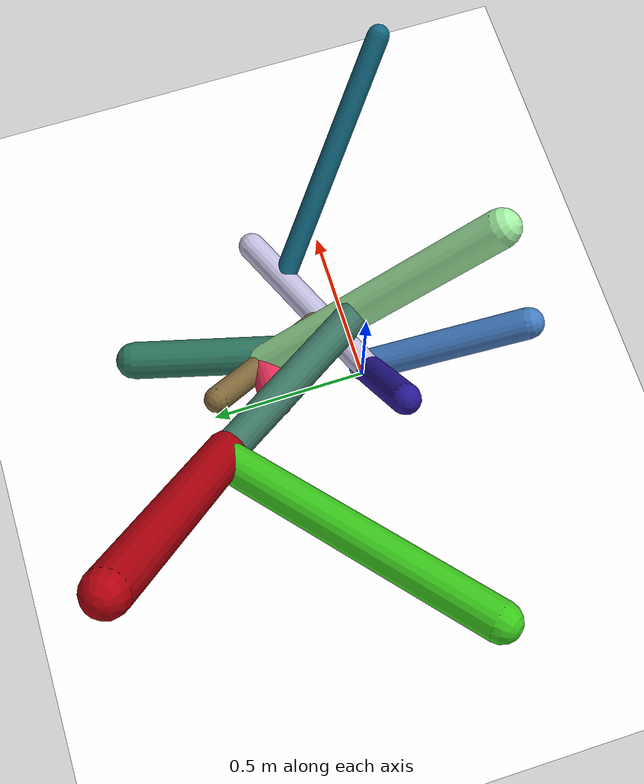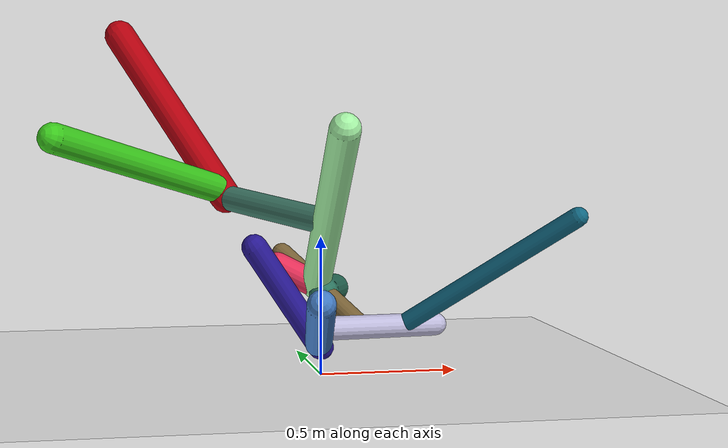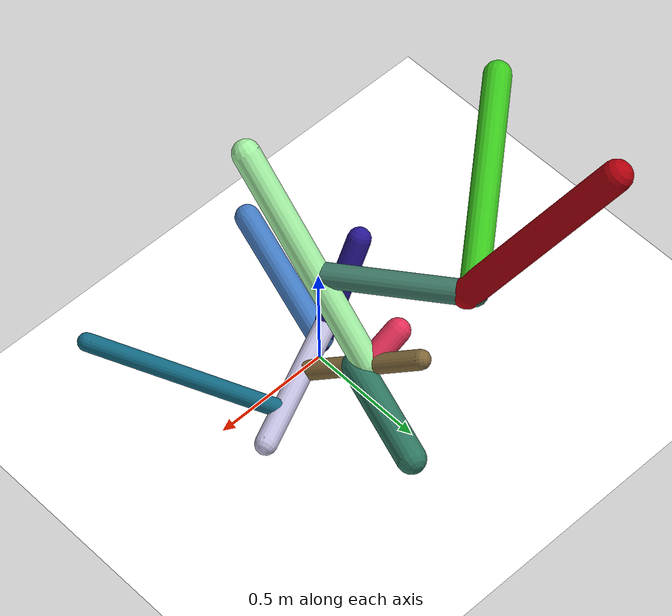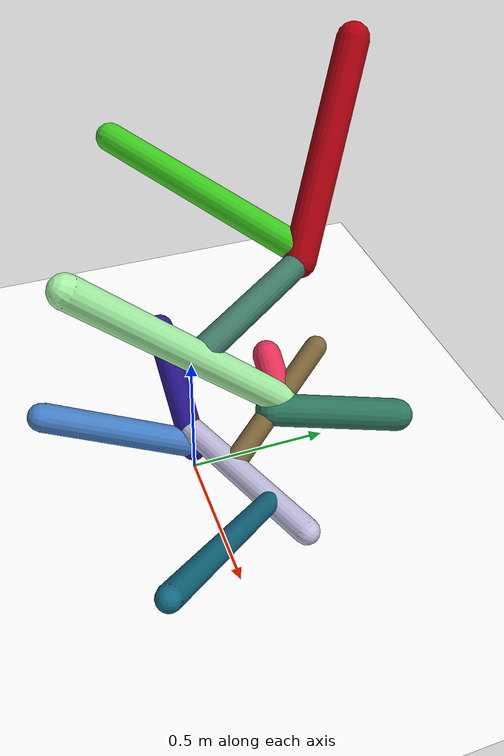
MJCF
<mujoco model="morphology">
  <option timestep="0.01"/>
  <default>
    <default class="/"/>
    <default class="0/"/>
    <default class="0/1/"/>
    <default class="0/2/"/>
    <default class="0/2/3/"/>
    <default class="0/2/4/"/>
    <default class="0/2/4/5/"/>
    <default class="0/2/4/6/"/>
    <default class="0/2/4/6/7/"/>
    <default class="0/2/4/6/7/8/"/>
    <default class="0/2/4/6/7/8/9/"/>
    <default class="0/2/4/10/"/>
  </default>
  <asset>
    <texture name="texplane" type="2d" builtin="checker" rgb1="0.10000000000000001 0.20000000000000001 0.29999999999999999" rgb2="0.20000000000000001 0.29999999999999999 0.40000000000000002" width="300" height="300"/>
    <material name="MatPlane" class="/" texture="texplane" texrepeat="20 20" specular="1" shininess="1" reflectance="0.5"/>
  </asset>
  <worldbody>
    <light name="//unnamed_light_0" class="/" directional="true" pos="0 0 1.5" dir="0 0 -1.3" cutoff="100" exponent="1" diffuse="1 1 1" specular="0.10000000000000001 0.10000000000000001 0.10000000000000001"/>
    <geom name="ground" class="/" type="plane" size="15 15 0.5" material="MatPlane" rgba="1 1 1 1"/>
    <site name="body" class="/" size="9.9999999999999995e-07 9.9999999999999995e-07 9.9999999999999995e-07" pos="0 0 0.10000000000000001"/>
    <body pos="0 0 0.10000000000000001" name="0/">
      <freejoint name="0/"/>
      <geom name="0/geom" class="0/" type="capsule" contype="1" conaffinity="1" condim="3" size="0.046493801045636066" rgba="0.16044382312400118 0.096512514676512784 0.58433694134846692 1" friction="0.59999999999999998 0.10000000000000001 0.10000000000000001" fromto="0 0 0 -0.2480202298241525 -0.039764900378618906 0.37102141602681971"/>
      <site name="0/end0" class="0/" size="0.0050000000000000001" pos="-0.2480202298241525 -0.039764900378618906 0.37102141602681971"/>
      <site name="0/attach1" class="0/" size="9.9999999999999995e-07 9.9999999999999995e-07 9.9999999999999995e-07" pos="-0.0086375024593073405 -0.0013848443937736596 0.012921116941386165"/>
      <body pos="-0.0086375024593073405 -0.0013848443937736596 0.012921116941386165" name="0/1/">
        <joint name="0/1/joint/" class="0/" type="hinge" axis="0 1 0" limited="true" range="-43.94261850789723 43.94261850789723"/>
        <geom name="0/1/geom" class="0/1/" type="capsule" contype="1" conaffinity="1" condim="3" size="0.049698822694150949" rgba="0.26771835193587479 0.49072014830358601 0.77103985976205369 1" friction="0.59999999999999998 0.10000000000000001 0.10000000000000001" fromto="0 0 0 -0.08530084797378823 -0.49483131436930622 0.21349589873130559"/>
        <site name="0/1/end1" class="0/1/" size="0.0050000000000000001" pos="-0.08530084797378823 -0.49483131436930622 0.21349589873130559"/>
      </body>
      <site name="0/attach2" class="0/" size="9.9999999999999995e-07 9.9999999999999995e-07 9.9999999999999995e-07" pos="-0.044945613456691277 -0.0072060970301834502 0.067235584616298805"/>
      <body pos="-0.044945613456691277 -0.0072060970301834502 0.067235584616298805" name="0/2/">
        <joint name="0/2/joint/" class="0/" type="hinge" axis="0 0 1" limited="true" range="-40.492241342998398 40.492241342998398"/>
        <geom name="0/2/geom" class="0/2/" type="capsule" contype="1" conaffinity="1" condim="3" size="0.043804640525463345" rgba="0.75670320671457791 0.74372737485628371 0.8751002575912078 1" friction="0.59999999999999998 0.10000000000000001 0.10000000000000001" fromto="0 0 0 0.53114022390236881 0.23322496744350096 -0.031257842064490338"/>
        <site name="0/2/end2" class="0/2/" size="0.0050000000000000001" pos="0.53114022390236881 0.23322496744350096 -0.031257842064490338"/>
        <site name="0/2/attach3" class="0/2/" size="9.9999999999999995e-07 9.9999999999999995e-07 9.9999999999999995e-07" pos="0.38491239128333143 0.16901596957973253 -0.022652268071512598"/>
        <body pos="0.38491239128333143 0.16901596957973253 -0.022652268071512598" name="0/2/3/">
          <joint name="0/2/3/joint/" class="0/2/" type="hinge" axis="0 0.13283669191878267 0.99113793857367516" limited="true" range="-33.290439288803114 33.290439288803114"/>
          <geom name="0/2/3/geom" class="0/2/3/" type="capsule" contype="1" conaffinity="1" condim="3" size="0.03539945907099213" rgba="0.067398263386977519 0.41099664430846106 0.51377876375647724 1" friction="0.59999999999999998 0.10000000000000001 0.10000000000000001" fromto="0 0 0 0.51432423807832661 -0.47573024167781769 0.44082257922403789"/>
          <site name="0/2/3/end3" class="0/2/3/" size="0.0050000000000000001" pos="0.51432423807832661 -0.47573024167781769 0.44082257922403789"/>
        </body>
        <site name="0/2/attach4" class="0/2/" size="9.9999999999999995e-07 9.9999999999999995e-07 9.9999999999999995e-07" pos="0.21379650088090327 0.09387856485644093 -0.012582020637368149"/>
        <body pos="0.21379650088090327 0.09387856485644093 -0.012582020637368149" name="0/2/4/">
          <joint name="0/2/4/joint/" class="0/2/" type="hinge" axis="0 0.13283669191878267 0.99113793857367516" limited="true" range="-57.375855663635043 57.375855663635043"/>
          <geom name="0/2/4/geom" class="0/2/4/" type="capsule" contype="1" conaffinity="1" condim="3" size="0.03944259529342458" rgba="0.50420640103600611 0.40716999210595506 0.22909166192647579 1" friction="0.59999999999999998 0.10000000000000001 0.10000000000000001" fromto="0 0 0 -0.23113464361827629 0.39163073849465779 0.23573773313678092"/>
          <site name="0/2/4/end4" class="0/2/4/" size="0.0050000000000000001" pos="-0.23113464361827629 0.39163073849465779 0.23573773313678092"/>
          <site name="0/2/4/attach5" class="0/2/4/" size="9.9999999999999995e-07 9.9999999999999995e-07 9.9999999999999995e-07" pos="-0.12925202972290692 0.21900251325333103 0.13182610799152661"/>
          <body pos="-0.12925202972290692 0.21900251325333103 0.13182610799152661" name="0/2/4/5/">
            <joint name="0/2/4/5/joint/" class="0/2/4/" type="hinge" axis="-0.89240250204449856 -0.38660425872696114 -0.232712099983854" limited="true" range="-43.104820410720791 43.104820410720791"/>
            <geom name="0/2/4/5/geom" class="0/2/4/5/" type="capsule" contype="1" conaffinity="1" condim="3" size="0.050355722304161445" rgba="0.89749495917424604 0.18533248863657703 0.34730675499387609 1" friction="0.59999999999999998 0.10000000000000001 0.10000000000000001" fromto="0 0 0 -0.14824644804755349 0.0048583444437741985 0.076898875174314929"/>
            <site name="0/2/4/5/end5" class="0/2/4/5/" size="0.0050000000000000001" pos="-0.14824644804755349 0.0048583444437741985 0.076898875174314929"/>
          </body>
          <site name="0/2/4/attach6" class="0/2/4/" size="9.9999999999999995e-07 9.9999999999999995e-07 9.9999999999999995e-07" pos="-0.12894636158417502 0.2184845941866265 0.13151435241482559"/>
          <body pos="-0.12894636158417502 0.2184845941866265 0.13151435241482559" name="0/2/4/6/">
            <joint name="0/2/4/6/joint/" class="0/2/4/" type="hinge" axis="-0.89240250204449856 -0.38660425872696114 -0.232712099983854" limited="true" range="-69.849004006126165 69.849004006126165"/>
            <geom name="0/2/4/6/geom" class="0/2/4/6/" type="capsule" contype="1" conaffinity="1" condim="3" size="0.055456318884368257" rgba="0.64922985302905045 0.9563624065127041 0.64942029988998118 1" friction="0.59999999999999998 0.10000000000000001 0.10000000000000001" fromto="0 0 0 -0.028981552252186571 -0.67367808796890216 0.61318254812943773"/>
            <site name="0/2/4/6/end6" class="0/2/4/6/" size="0.0050000000000000001" pos="-0.028981552252186571 -0.67367808796890216 0.61318254812943773"/>
            <site name="0/2/4/6/attach7" class="0/2/4/6/" size="9.9999999999999995e-07 9.9999999999999995e-07 9.9999999999999995e-07" pos="-0.01254519659384839 -0.2916139198134266 0.26542731553035853"/>
            <body pos="-0.01254519659384839 -0.2916139198134266 0.26542731553035853" name="0/2/4/6/7/">
              <geom name="0/2/4/6/7/geom" class="0/2/4/6/7/" type="capsule" contype="1" conaffinity="1" condim="3" size="0.048971569281840856" rgba="0.24151322777917994 0.47325159235025238 0.40315244295115205 1" friction="0.59999999999999998 0.10000000000000001 0.10000000000000001" fromto="0 0 0 -0.32340741353293573 0.50450118626550577 0.062146623146090763"/>
              <site name="0/2/4/6/7/end7" class="0/2/4/6/7/" size="0.0050000000000000001" pos="-0.32340741353293573 0.50450118626550577 0.062146623146090763"/>
              <site name="0/2/4/6/7/attach8" class="0/2/4/6/7/" size="9.9999999999999995e-07 9.9999999999999995e-07 9.9999999999999995e-07" pos="-0.30815671692366559 0.48071077760819603 0.059216018418950966"/>
              <body pos="-0.30815671692366559 0.48071077760819603 0.059216018418950966" name="0/2/4/6/7/8/">
                <joint name="0/2/4/6/7/8/joint/" class="0/2/4/6/7/" type="hinge" axis="0 -0.12226017728200497 0.9924980851623707" limited="true" range="-57.625815806398336 57.625815806398336"/>
                <geom name="0/2/4/6/7/8/geom" class="0/2/4/6/7/8/" type="capsule" contype="1" conaffinity="1" condim="3" size="0.060858886292624849" rgba="0.70733661583359142 0.00081365184485271413 0.050705262263784134 1" friction="0.59999999999999998 0.10000000000000001 0.10000000000000001" fromto="0 0 0 -0.38404115887259649 0.32833818264592152 0.63277253875719897"/>
                <site name="0/2/4/6/7/8/end8" class="0/2/4/6/7/8/" size="0.0050000000000000001" pos="-0.38404115887259649 0.32833818264592152 0.63277253875719897"/>
                <site name="0/2/4/6/7/8/attach9" class="0/2/4/6/7/8/" size="9.9999999999999995e-07 9.9999999999999995e-07 9.9999999999999995e-07" pos="-0.017824207734693807 0.01523890822507968 0.029368386484219362"/>
                <body pos="-0.017824207734693807 0.01523890822507968 0.029368386484219362" name="0/2/4/6/7/8/9/">
                  <joint name="0/2/4/6/7/8/9/joint/" class="0/2/4/6/7/8/" type="hinge" axis="-0.8803786836509836 -0.21843790187960202 -0.42097298772652714" limited="true" range="-31.564639644213813 31.564639644213813"/>
                  <geom name="0/2/4/6/7/8/9/geom" class="0/2/4/6/7/8/9/" type="capsule" contype="1" conaffinity="1" condim="3" size="0.055343692762018448" rgba="0.2357820158883539 0.7943359494913681 0.11695438325673313 1" friction="0.59999999999999998 0.10000000000000001 0.10000000000000001" fromto="0 0 0 -0.65115328717617948 -0.53279699628711596 0.2218508613683462"/>
                  <site name="0/2/4/6/7/8/9/end9" class="0/2/4/6/7/8/9/" size="0.0050000000000000001" pos="-0.65115328717617948 -0.53279699628711596 0.2218508613683462"/>
                </body>
              </body>
            </body>
          </body>
          <site name="0/2/4/attach10" class="0/2/4/" size="9.9999999999999995e-07 9.9999999999999995e-07 9.9999999999999995e-07" pos="-0.10635197155680229 0.18020103135183979 0.10846999089774505"/>
          <body pos="-0.10635197155680229 0.18020103135183979 0.10846999089774505" name="0/2/4/10/">
            <geom name="0/2/4/10/geom" class="0/2/4/10/" type="capsule" contype="1" conaffinity="1" condim="3" size="0.057527092856975583" rgba="0.17741526104365857 0.46494966643934721 0.37748356175334852 1" friction="0.59999999999999998 0.10000000000000001 0.10000000000000001" fromto="0 0 0 0.12566026360355453 0.42157961746355221 -0.041946634130597182"/>
            <site name="0/2/4/10/end10" class="0/2/4/10/" size="0.0050000000000000001" pos="0.12566026360355453 0.42157961746355221 -0.041946634130597182"/>
          </body>
        </body>
      </body>
      <camera name="0/iso" class="0/" mode="trackcom" pos="-2.2999999999999998 -2.2999999999999998 1" xyaxes="0.45000000000000001 -0.45000000000000001 0 0.29999999999999999 0.14999999999999999 0.93999999999999995"/>
    </body>
  </worldbody>
  <actuator>
    <motor name="0/1/motor" class="0/1/" ctrllimited="true" ctrlrange="-1 1" gear="96" joint="0/1/joint/"/>
    <motor name="0/2/motor" class="0/2/" ctrllimited="true" ctrlrange="-1 1" gear="64" joint="0/2/joint/"/>
    <motor name="0/2/3/motor" class="0/2/3/" ctrllimited="true" ctrlrange="-1 1" gear="54" joint="0/2/3/joint/"/>
    <motor name="0/2/4/motor" class="0/2/4/" ctrllimited="true" ctrlrange="-1 1" gear="97" joint="0/2/4/joint/"/>
    <motor name="0/2/4/5/motor" class="0/2/4/5/" ctrllimited="true" ctrlrange="-1 1" gear="80" joint="0/2/4/5/joint/"/>
    <motor name="0/2/4/6/motor" class="0/2/4/6/" ctrllimited="true" ctrlrange="-1 1" gear="91" joint="0/2/4/6/joint/"/>
    <motor name="0/2/4/6/7/8/motor" class="0/2/4/6/7/8/" ctrllimited="true" ctrlrange="-1 1" gear="92" joint="0/2/4/6/7/8/joint/"/>
    <motor name="0/2/4/6/7/8/9/motor" class="0/2/4/6/7/8/9/" ctrllimited="true" ctrlrange="-1 1" gear="54" joint="0/2/4/6/7/8/9/joint/"/>
  </actuator>
  <sensor>
    <subtreelinvel name="velocity" body="0/"/>
  </sensor>
</mujoco>
